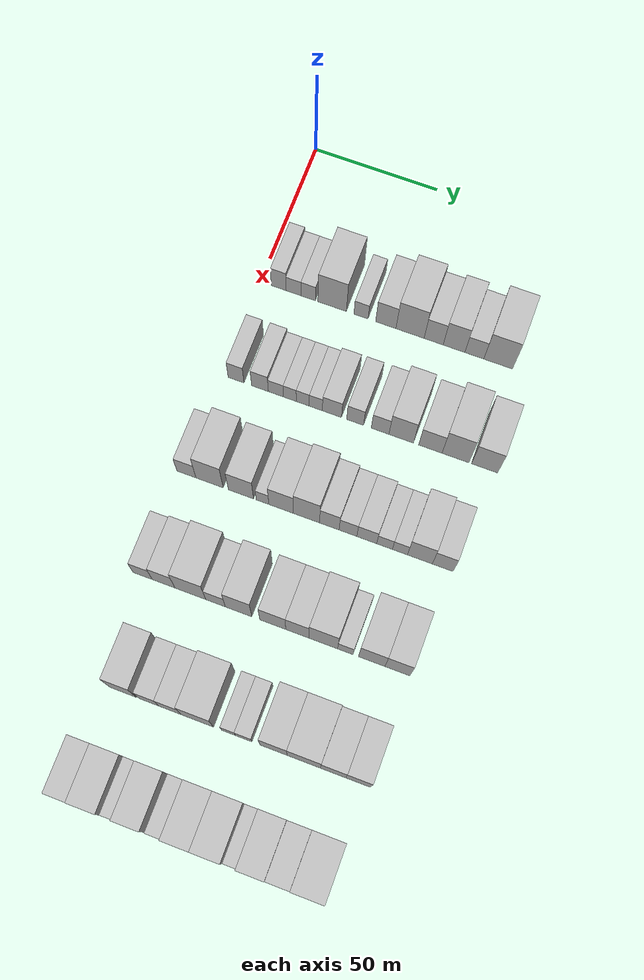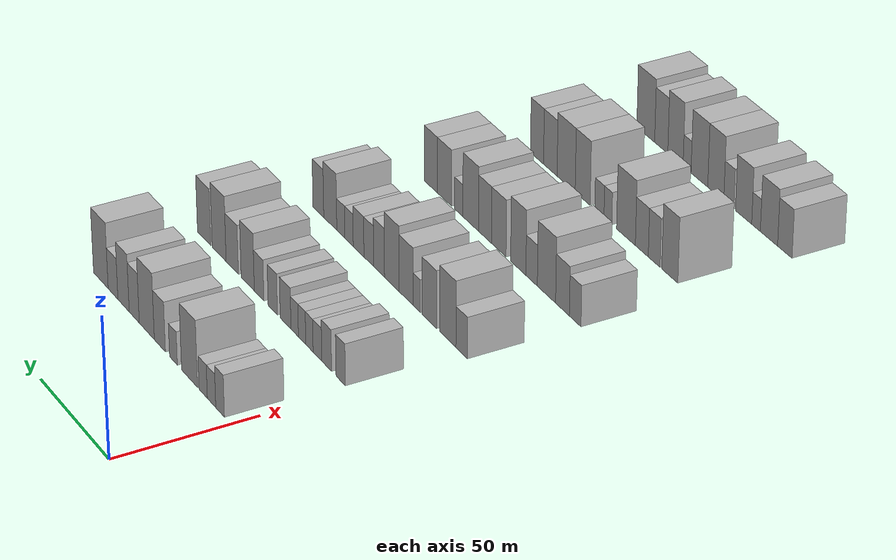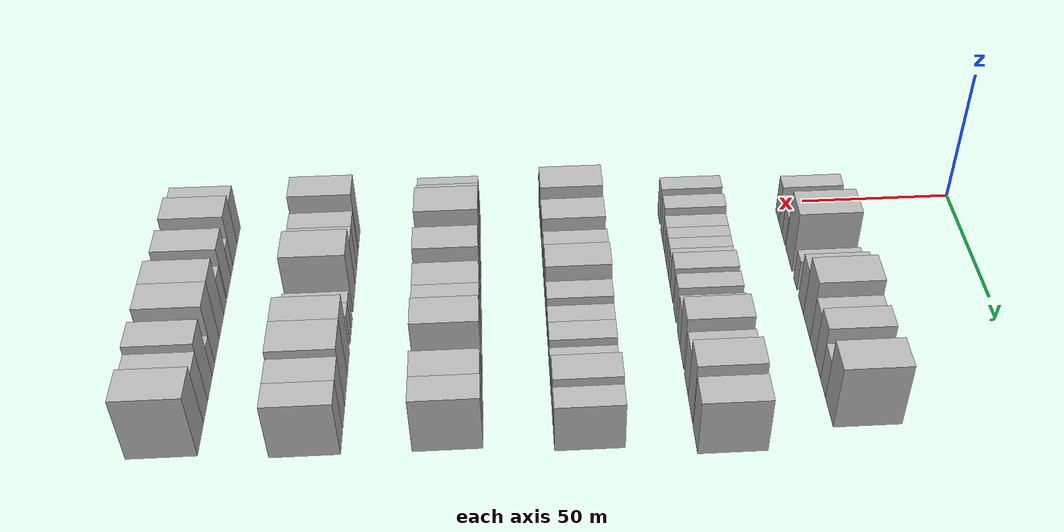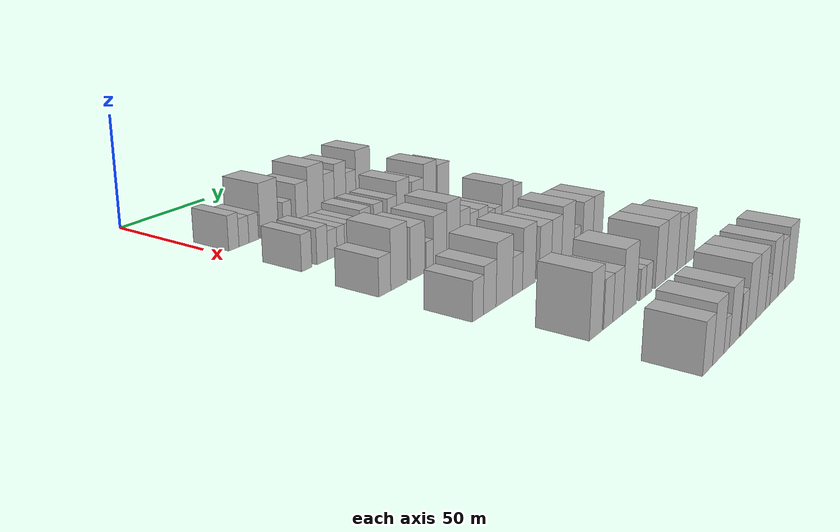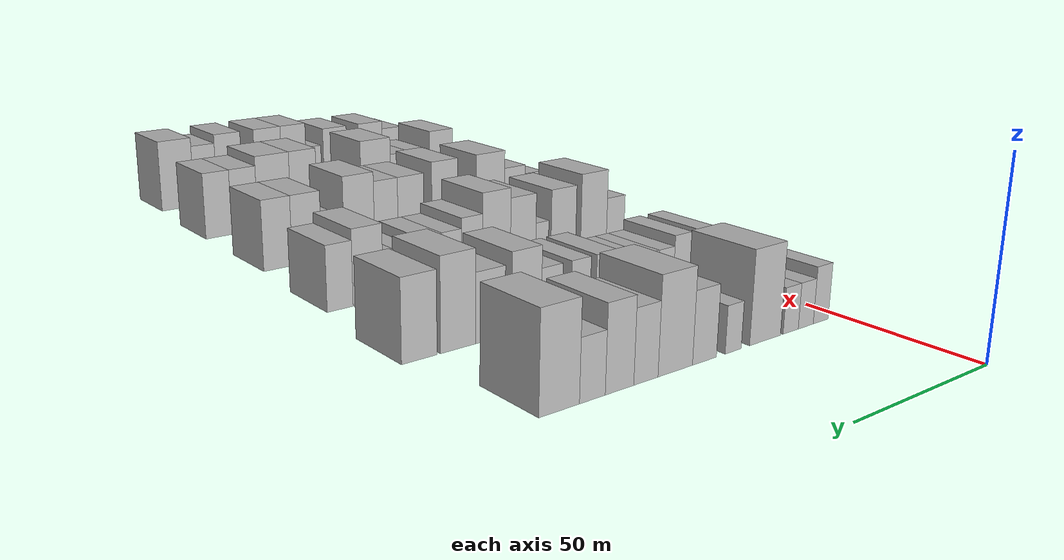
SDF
<sdf version="1.6">
 <world name="default">
  <model name="building_69">
   <static>1</static>
   <pose>50.0000 7.3095 0 0.000000 0.000000 0.000000</pose>
   <link name="link">
    <pose>0 0 7.50 0 0 0</pose>
    <collision name="collision"><geometry><box><size>20.0000 6.0174 15.0000</size></box></geometry></collision>
    <visual name="visual">
     <cast_shadows>0</cast_shadows>
     <geometry><box><size>20.0000 6.0174 15.0000</size></box></geometry>
     <material>
      <script>
       <uri>model://HANNAS_wall/materials/scripts</uri>
       <uri>model://HANNAS_wall/materials/textures</uri>
       <name>vrc/HANNAS_wall</name>
      </script>
     </material>
    </visual>
   </link>
  </model>
  <model name="building_70">
   <static>1</static>
   <pose>50.0000 13.2689 0 0.000000 0.000000 0.000000</pose>
   <link name="link">
    <pose>0 0 6.00 0 0 0</pose>
    <collision name="collision"><geometry><box><size>20.0000 5.9014 12.0000</size></box></geometry></collision>
    <visual name="visual">
     <cast_shadows>0</cast_shadows>
     <geometry><box><size>20.0000 5.9014 12.0000</size></box></geometry>
     <material>
      <script>
       <uri>model://HANNAS_wall/materials/scripts</uri>
       <uri>model://HANNAS_wall/materials/textures</uri>
       <name>vrc/HANNAS_wall</name>
      </script>
     </material>
    </visual>
   </link>
  </model>
  <model name="building_71">
   <static>1</static>
   <pose>50.0000 19.1371 0 0.000000 0.000000 0.000000</pose>
   <link name="link">
    <pose>0 0 6.00 0 0 0</pose>
    <collision name="collision"><geometry><box><size>20.0000 5.8350 12.0000</size></box></geometry></collision>
    <visual name="visual">
     <cast_shadows>0</cast_shadows>
     <geometry><box><size>20.0000 5.8350 12.0000</size></box></geometry>
     <material>
      <script>
       <uri>model://HANNAS_wall/materials/scripts</uri>
       <uri>model://HANNAS_wall/materials/textures</uri>
       <name>vrc/HANNAS_wall</name>
      </script>
     </material>
    </visual>
   </link>
  </model>
  <model name="building_72">
   <static>1</static>
   <pose>50.0000 28.7532 0 0.000000 0.000000 0.000000</pose>
   <link name="link">
    <pose>0 0 12.00 0 0 0</pose>
    <collision name="collision"><geometry><box><size>20.0000 11.3973 24.0000</size></box></geometry></collision>
    <visual name="visual">
     <cast_shadows>0</cast_shadows>
     <geometry><box><size>20.0000 11.3973 24.0000</size></box></geometry>
     <material>
      <script>
       <uri>model://HANNAS_wall/materials/scripts</uri>
       <uri>model://HANNAS_wall/materials/textures</uri>
       <name>vrc/HANNAS_wall</name>
      </script>
     </material>
    </visual>
   </link>
  </model>
  <model name="building_73">
   <static>1</static>
   <pose>50.0000 40.2672 0 0.000000 0.000000 0.000000</pose>
   <link name="link">
    <pose>0 0 6.00 0 0 0</pose>
    <collision name="collision"><geometry><box><size>20.0000 5.6307 12.0000</size></box></geometry></collision>
    <visual name="visual">
     <cast_shadows>0</cast_shadows>
     <geometry><box><size>20.0000 5.6307 12.0000</size></box></geometry>
     <material>
      <script>
       <uri>model://HANNAS_wall/materials/scripts</uri>
       <uri>model://HANNAS_wall/materials/textures</uri>
       <name>vrc/HANNAS_wall</name>
      </script>
     </material>
    </visual>
   </link>
  </model>
  <model name="building_74">
   <static>1</static>
   <pose>50.0000 50.1146 0 0.000000 0.000000 0.000000</pose>
   <link name="link">
    <pose>0 0 9.00 0 0 0</pose>
    <collision name="collision"><geometry><box><size>20.0000 8.0639 18.0000</size></box></geometry></collision>
    <visual name="visual">
     <cast_shadows>0</cast_shadows>
     <geometry><box><size>20.0000 8.0639 18.0000</size></box></geometry>
     <material>
      <script>
       <uri>model://HANNAS_wall/materials/scripts</uri>
       <uri>model://HANNAS_wall/materials/textures</uri>
       <name>vrc/HANNAS_wall</name>
      </script>
     </material>
    </visual>
   </link>
  </model>
  <model name="building_75">
   <static>1</static>
   <pose>50.0000 59.7091 0 0.000000 0.000000 0.000000</pose>
   <link name="link">
    <pose>0 0 12.00 0 0 0</pose>
    <collision name="collision"><geometry><box><size>20.0000 11.1252 24.0000</size></box></geometry></collision>
    <visual name="visual">
     <cast_shadows>0</cast_shadows>
     <geometry><box><size>20.0000 11.1252 24.0000</size></box></geometry>
     <material>
      <script>
       <uri>model://HANNAS_wall/materials/scripts</uri>
       <uri>model://HANNAS_wall/materials/textures</uri>
       <name>vrc/HANNAS_wall</name>
      </script>
     </material>
    </visual>
   </link>
  </model>
  <model name="building_76">
   <static>1</static>
   <pose>50.0000 69.0193 0 0.000000 0.000000 0.000000</pose>
   <link name="link">
    <pose>0 0 9.00 0 0 0</pose>
    <collision name="collision"><geometry><box><size>20.0000 7.4951 18.0000</size></box></geometry></collision>
    <visual name="visual">
     <cast_shadows>0</cast_shadows>
     <geometry><box><size>20.0000 7.4951 18.0000</size></box></geometry>
     <material>
      <script>
       <uri>model://HANNAS_wall/materials/scripts</uri>
       <uri>model://HANNAS_wall/materials/textures</uri>
       <name>vrc/HANNAS_wall</name>
      </script>
     </material>
    </visual>
   </link>
  </model>
  <model name="building_77">
   <static>1</static>
   <pose>50.0000 77.0157 0 0.000000 0.000000 0.000000</pose>
   <link name="link">
    <pose>0 0 10.50 0 0 0</pose>
    <collision name="collision"><geometry><box><size>20.0000 8.4978 21.0000</size></box></geometry></collision>
    <visual name="visual">
     <cast_shadows>0</cast_shadows>
     <geometry><box><size>20.0000 8.4978 21.0000</size></box></geometry>
     <material>
      <script>
       <uri>model://HANNAS_wall/materials/scripts</uri>
       <uri>model://HANNAS_wall/materials/textures</uri>
       <name>vrc/HANNAS_wall</name>
      </script>
     </material>
    </visual>
   </link>
  </model>
  <model name="building_78">
   <static>1</static>
   <pose>50.0000 84.9643 0 0.000000 0.000000 0.000000</pose>
   <link name="link">
    <pose>0 0 7.50 0 0 0</pose>
    <collision name="collision"><geometry><box><size>20.0000 7.3994 15.0000</size></box></geometry></collision>
    <visual name="visual">
     <cast_shadows>0</cast_shadows>
     <geometry><box><size>20.0000 7.3994 15.0000</size></box></geometry>
     <material>
      <script>
       <uri>model://HANNAS_wall/materials/scripts</uri>
       <uri>model://HANNAS_wall/materials/textures</uri>
       <name>vrc/HANNAS_wall</name>
      </script>
     </material>
    </visual>
   </link>
  </model>
  <model name="building_79">
   <static>1</static>
   <pose>50.0000 94.2592 0 0.000000 0.000000 0.000000</pose>
   <link name="link">
    <pose>0 0 12.00 0 0 0</pose>
    <collision name="collision"><geometry><box><size>20.0000 11.1904 24.0000</size></box></geometry></collision>
    <visual name="visual">
     <cast_shadows>0</cast_shadows>
     <geometry><box><size>20.0000 11.1904 24.0000</size></box></geometry>
     <material>
      <script>
       <uri>model://HANNAS_wall/materials/scripts</uri>
       <uri>model://HANNAS_wall/materials/textures</uri>
       <name>vrc/HANNAS_wall</name>
      </script>
     </material>
    </visual>
   </link>
  </model>
  <model name="building_212">
   <static>1</static>
   <pose>90.0000 5.7569 0 0.000000 0.000000 0.000000</pose>
   <link name="link">
    <pose>0 0 7.50 0 0 0</pose>
    <collision name="collision"><geometry><box><size>20.0000 6.2417 15.0000</size></box></geometry></collision>
    <visual name="visual">
     <cast_shadows>0</cast_shadows>
     <geometry><box><size>20.0000 6.2417 15.0000</size></box></geometry>
     <material>
      <script>
       <uri>model://HANNAS_wall/materials/scripts</uri>
       <uri>model://HANNAS_wall/materials/textures</uri>
       <name>vrc/HANNAS_wall</name>
      </script>
     </material>
    </visual>
   </link>
  </model>
  <model name="building_213">
   <static>1</static>
   <pose>90.0000 15.1800 0 0.000000 0.000000 0.000000</pose>
   <link name="link">
    <pose>0 0 7.50 0 0 0</pose>
    <collision name="collision"><geometry><box><size>20.0000 6.6044 15.0000</size></box></geometry></collision>
    <visual name="visual">
     <cast_shadows>0</cast_shadows>
     <geometry><box><size>20.0000 6.6044 15.0000</size></box></geometry>
     <material>
      <script>
       <uri>model://HANNAS_wall/materials/scripts</uri>
       <uri>model://HANNAS_wall/materials/textures</uri>
       <name>vrc/HANNAS_wall</name>
      </script>
     </material>
    </visual>
   </link>
  </model>
  <model name="building_214">
   <static>1</static>
   <pose>90.0000 21.4472 0 0.000000 0.000000 0.000000</pose>
   <link name="link">
    <pose>0 0 6.00 0 0 0</pose>
    <collision name="collision"><geometry><box><size>20.0000 5.9299 12.0000</size></box></geometry></collision>
    <visual name="visual">
     <cast_shadows>0</cast_shadows>
     <geometry><box><size>20.0000 5.9299 12.0000</size></box></geometry>
     <material>
      <script>
       <uri>model://HANNAS_wall/materials/scripts</uri>
       <uri>model://HANNAS_wall/materials/textures</uri>
       <name>vrc/HANNAS_wall</name>
      </script>
     </material>
    </visual>
   </link>
  </model>
  <model name="building_215">
   <static>1</static>
   <pose>90.0000 26.9293 0 0.000000 0.000000 0.000000</pose>
   <link name="link">
    <pose>0 0 6.00 0 0 0</pose>
    <collision name="collision"><geometry><box><size>20.0000 5.0343 12.0000</size></box></geometry></collision>
    <visual name="visual">
     <cast_shadows>0</cast_shadows>
     <geometry><box><size>20.0000 5.0343 12.0000</size></box></geometry>
     <material>
      <script>
       <uri>model://HANNAS_wall/materials/scripts</uri>
       <uri>model://HANNAS_wall/materials/textures</uri>
       <name>vrc/HANNAS_wall</name>
      </script>
     </material>
    </visual>
   </link>
  </model>
  <model name="building_216">
   <static>1</static>
   <pose>90.0000 31.9751 0 0.000000 0.000000 0.000000</pose>
   <link name="link">
    <pose>0 0 6.00 0 0 0</pose>
    <collision name="collision"><geometry><box><size>20.0000 5.0571 12.0000</size></box></geometry></collision>
    <visual name="visual">
     <cast_shadows>0</cast_shadows>
     <geometry><box><size>20.0000 5.0571 12.0000</size></box></geometry>
     <material>
      <script>
       <uri>model://HANNAS_wall/materials/scripts</uri>
       <uri>model://HANNAS_wall/materials/textures</uri>
       <name>vrc/HANNAS_wall</name>
      </script>
     </material>
    </visual>
   </link>
  </model>
  <model name="building_217">
   <static>1</static>
   <pose>90.0000 37.0781 0 0.000000 0.000000 0.000000</pose>
   <link name="link">
    <pose>0 0 6.00 0 0 0</pose>
    <collision name="collision"><geometry><box><size>20.0000 5.1490 12.0000</size></box></geometry></collision>
    <visual name="visual">
     <cast_shadows>0</cast_shadows>
     <geometry><box><size>20.0000 5.1490 12.0000</size></box></geometry>
     <material>
      <script>
       <uri>model://HANNAS_wall/materials/scripts</uri>
       <uri>model://HANNAS_wall/materials/textures</uri>
       <name>vrc/HANNAS_wall</name>
      </script>
     </material>
    </visual>
   </link>
  </model>
  <model name="building_218">
   <static>1</static>
   <pose>90.0000 43.3965 0 0.000000 0.000000 0.000000</pose>
   <link name="link">
    <pose>0 0 7.50 0 0 0</pose>
    <collision name="collision"><geometry><box><size>20.0000 7.4877 15.0000</size></box></geometry></collision>
    <visual name="visual">
     <cast_shadows>0</cast_shadows>
     <geometry><box><size>20.0000 7.4877 15.0000</size></box></geometry>
     <material>
      <script>
       <uri>model://HANNAS_wall/materials/scripts</uri>
       <uri>model://HANNAS_wall/materials/textures</uri>
       <name>vrc/HANNAS_wall</name>
      </script>
     </material>
    </visual>
   </link>
  </model>
  <model name="building_219">
   <static>1</static>
   <pose>90.0000 52.4154 0 0.000000 0.000000 0.000000</pose>
   <link name="link">
    <pose>0 0 7.50 0 0 0</pose>
    <collision name="collision"><geometry><box><size>20.0000 6.5501 15.0000</size></box></geometry></collision>
    <visual name="visual">
     <cast_shadows>0</cast_shadows>
     <geometry><box><size>20.0000 6.5501 15.0000</size></box></geometry>
     <material>
      <script>
       <uri>model://HANNAS_wall/materials/scripts</uri>
       <uri>model://HANNAS_wall/materials/textures</uri>
       <name>vrc/HANNAS_wall</name>
      </script>
     </material>
    </visual>
   </link>
  </model>
  <model name="building_220">
   <static>1</static>
   <pose>90.0000 62.1055 0 0.000000 0.000000 0.000000</pose>
   <link name="link">
    <pose>0 0 7.50 0 0 0</pose>
    <collision name="collision"><geometry><box><size>20.0000 6.8302 15.0000</size></box></geometry></collision>
    <visual name="visual">
     <cast_shadows>0</cast_shadows>
     <geometry><box><size>20.0000 6.8302 15.0000</size></box></geometry>
     <material>
      <script>
       <uri>model://HANNAS_wall/materials/scripts</uri>
       <uri>model://HANNAS_wall/materials/textures</uri>
       <name>vrc/HANNAS_wall</name>
      </script>
     </material>
    </visual>
   </link>
  </model>
  <model name="building_221">
   <static>1</static>
   <pose>90.0000 70.2670 0 0.000000 0.000000 0.000000</pose>
   <link name="link">
    <pose>0 0 10.50 0 0 0</pose>
    <collision name="collision"><geometry><box><size>20.0000 9.4926 21.0000</size></box></geometry></collision>
    <visual name="visual">
     <cast_shadows>0</cast_shadows>
     <geometry><box><size>20.0000 9.4926 21.0000</size></box></geometry>
     <material>
      <script>
       <uri>model://HANNAS_wall/materials/scripts</uri>
       <uri>model://HANNAS_wall/materials/textures</uri>
       <name>vrc/HANNAS_wall</name>
      </script>
     </material>
    </visual>
   </link>
  </model>
  <model name="building_222">
   <static>1</static>
   <pose>90.0000 81.4906 0 0.000000 0.000000 0.000000</pose>
   <link name="link">
    <pose>0 0 9.00 0 0 0</pose>
    <collision name="collision"><geometry><box><size>20.0000 8.9547 18.0000</size></box></geometry></collision>
    <visual name="visual">
     <cast_shadows>0</cast_shadows>
     <geometry><box><size>20.0000 8.9547 18.0000</size></box></geometry>
     <material>
      <script>
       <uri>model://HANNAS_wall/materials/scripts</uri>
       <uri>model://HANNAS_wall/materials/textures</uri>
       <name>vrc/HANNAS_wall</name>
      </script>
     </material>
    </visual>
   </link>
  </model>
  <model name="building_223">
   <static>1</static>
   <pose>90.0000 91.1051 0 0.000000 0.000000 0.000000</pose>
   <link name="link">
    <pose>0 0 12.00 0 0 0</pose>
    <collision name="collision"><geometry><box><size>20.0000 10.2742 24.0000</size></box></geometry></collision>
    <visual name="visual">
     <cast_shadows>0</cast_shadows>
     <geometry><box><size>20.0000 10.2742 24.0000</size></box></geometry>
     <material>
      <script>
       <uri>model://HANNAS_wall/materials/scripts</uri>
       <uri>model://HANNAS_wall/materials/textures</uri>
       <name>vrc/HANNAS_wall</name>
      </script>
     </material>
    </visual>
   </link>
  </model>
  <model name="building_224">
   <static>1</static>
   <pose>90.0000 102.2085 0 0.000000 0.000000 0.000000</pose>
   <link name="link">
    <pose>0 0 10.50 0 0 0</pose>
    <collision name="collision"><geometry><box><size>20.0000 9.9325 21.0000</size></box></geometry></collision>
    <visual name="visual">
     <cast_shadows>0</cast_shadows>
     <geometry><box><size>20.0000 9.9325 21.0000</size></box></geometry>
     <material>
      <script>
       <uri>model://HANNAS_wall/materials/scripts</uri>
       <uri>model://HANNAS_wall/materials/textures</uri>
       <name>vrc/HANNAS_wall</name>
      </script>
     </material>
    </visual>
   </link>
  </model>
  <model name="building_349">
   <static>1</static>
   <pose>130.0000 2.1765 0 0.000000 0.000000 0.000000</pose>
   <link name="link">
    <pose>0 0 7.50 0 0 0</pose>
    <collision name="collision"><geometry><box><size>20.0000 7.4127 15.0000</size></box></geometry></collision>
    <visual name="visual">
     <cast_shadows>0</cast_shadows>
     <geometry><box><size>20.0000 7.4127 15.0000</size></box></geometry>
     <material>
      <script>
       <uri>model://HANNAS_wall/materials/scripts</uri>
       <uri>model://HANNAS_wall/materials/textures</uri>
       <name>vrc/HANNAS_wall</name>
      </script>
     </material>
    </visual>
   </link>
  </model>
  <model name="building_350">
   <static>1</static>
   <pose>130.0000 11.1733 0 0.000000 0.000000 0.000000</pose>
   <link name="link">
    <pose>0 0 12.00 0 0 0</pose>
    <collision name="collision"><geometry><box><size>20.0000 10.5808 24.0000</size></box></geometry></collision>
    <visual name="visual">
     <cast_shadows>0</cast_shadows>
     <geometry><box><size>20.0000 10.5808 24.0000</size></box></geometry>
     <material>
      <script>
       <uri>model://HANNAS_wall/materials/scripts</uri>
       <uri>model://HANNAS_wall/materials/textures</uri>
       <name>vrc/HANNAS_wall</name>
      </script>
     </material>
    </visual>
   </link>
  </model>
  <model name="building_351">
   <static>1</static>
   <pose>130.0000 23.3234 0 0.000000 0.000000 0.000000</pose>
   <link name="link">
    <pose>0 0 10.50 0 0 0</pose>
    <collision name="collision"><geometry><box><size>20.0000 9.7195 21.0000</size></box></geometry></collision>
    <visual name="visual">
     <cast_shadows>0</cast_shadows>
     <geometry><box><size>20.0000 9.7195 21.0000</size></box></geometry>
     <material>
      <script>
       <uri>model://HANNAS_wall/materials/scripts</uri>
       <uri>model://HANNAS_wall/materials/textures</uri>
       <name>vrc/HANNAS_wall</name>
      </script>
     </material>
    </visual>
   </link>
  </model>
  <model name="building_352">
   <static>1</static>
   <pose>130.0000 31.6025 0 0.000000 0.000000 0.000000</pose>
   <link name="link">
    <pose>0 0 6.00 0 0 0</pose>
    <collision name="collision"><geometry><box><size>20.0000 4.8387 12.0000</size></box></geometry></collision>
    <visual name="visual">
     <cast_shadows>0</cast_shadows>
     <geometry><box><size>20.0000 4.8387 12.0000</size></box></geometry>
     <material>
      <script>
       <uri>model://HANNAS_wall/materials/scripts</uri>
       <uri>model://HANNAS_wall/materials/textures</uri>
       <name>vrc/HANNAS_wall</name>
      </script>
     </material>
    </visual>
   </link>
  </model>
  <model name="building_353">
   <static>1</static>
   <pose>130.0000 38.7316 0 0.000000 0.000000 0.000000</pose>
   <link name="link">
    <pose>0 0 10.50 0 0 0</pose>
    <collision name="collision"><geometry><box><size>20.0000 9.4195 21.0000</size></box></geometry></collision>
    <visual name="visual">
     <cast_shadows>0</cast_shadows>
     <geometry><box><size>20.0000 9.4195 21.0000</size></box></geometry>
     <material>
      <script>
       <uri>model://HANNAS_wall/materials/scripts</uri>
       <uri>model://HANNAS_wall/materials/textures</uri>
       <name>vrc/HANNAS_wall</name>
      </script>
     </material>
    </visual>
   </link>
  </model>
  <model name="building_354">
   <static>1</static>
   <pose>130.0000 48.4304 0 0.000000 0.000000 0.000000</pose>
   <link name="link">
    <pose>0 0 12.00 0 0 0</pose>
    <collision name="collision"><geometry><box><size>20.0000 9.9781 24.0000</size></box></geometry></collision>
    <visual name="visual">
     <cast_shadows>0</cast_shadows>
     <geometry><box><size>20.0000 9.9781 24.0000</size></box></geometry>
     <material>
      <script>
       <uri>model://HANNAS_wall/materials/scripts</uri>
       <uri>model://HANNAS_wall/materials/textures</uri>
       <name>vrc/HANNAS_wall</name>
      </script>
     </material>
    </visual>
   </link>
  </model>
  <model name="building_355">
   <static>1</static>
   <pose>130.0000 57.1374 0 0.000000 0.000000 0.000000</pose>
   <link name="link">
    <pose>0 0 9.00 0 0 0</pose>
    <collision name="collision"><geometry><box><size>20.0000 7.4360 18.0000</size></box></geometry></collision>
    <visual name="visual">
     <cast_shadows>0</cast_shadows>
     <geometry><box><size>20.0000 7.4360 18.0000</size></box></geometry>
     <material>
      <script>
       <uri>model://HANNAS_wall/materials/scripts</uri>
       <uri>model://HANNAS_wall/materials/textures</uri>
       <name>vrc/HANNAS_wall</name>
      </script>
     </material>
    </visual>
   </link>
  </model>
  <model name="building_356">
   <static>1</static>
   <pose>130.0000 64.2188 0 0.000000 0.000000 0.000000</pose>
   <link name="link">
    <pose>0 0 7.50 0 0 0</pose>
    <collision name="collision"><geometry><box><size>20.0000 6.7268 15.0000</size></box></geometry></collision>
    <visual name="visual">
     <cast_shadows>0</cast_shadows>
     <geometry><box><size>20.0000 6.7268 15.0000</size></box></geometry>
     <material>
      <script>
       <uri>model://HANNAS_wall/materials/scripts</uri>
       <uri>model://HANNAS_wall/materials/textures</uri>
       <name>vrc/HANNAS_wall</name>
      </script>
     </material>
    </visual>
   </link>
  </model>
  <model name="building_357">
   <static>1</static>
   <pose>130.0000 71.3233 0 0.000000 0.000000 0.000000</pose>
   <link name="link">
    <pose>0 0 7.50 0 0 0</pose>
    <collision name="collision"><geometry><box><size>20.0000 7.4824 15.0000</size></box></geometry></collision>
    <visual name="visual">
     <cast_shadows>0</cast_shadows>
     <geometry><box><size>20.0000 7.4824 15.0000</size></box></geometry>
     <material>
      <script>
       <uri>model://HANNAS_wall/materials/scripts</uri>
       <uri>model://HANNAS_wall/materials/textures</uri>
       <name>vrc/HANNAS_wall</name>
      </script>
     </material>
    </visual>
   </link>
  </model>
  <model name="building_358">
   <static>1</static>
   <pose>130.0000 78.0271 0 0.000000 0.000000 0.000000</pose>
   <link name="link">
    <pose>0 0 6.00 0 0 0</pose>
    <collision name="collision"><geometry><box><size>20.0000 5.9251 12.0000</size></box></geometry></collision>
    <visual name="visual">
     <cast_shadows>0</cast_shadows>
     <geometry><box><size>20.0000 5.9251 12.0000</size></box></geometry>
     <material>
      <script>
       <uri>model://HANNAS_wall/materials/scripts</uri>
       <uri>model://HANNAS_wall/materials/textures</uri>
       <name>vrc/HANNAS_wall</name>
      </script>
     </material>
    </visual>
   </link>
  </model>
  <model name="building_359">
   <static>1</static>
   <pose>130.0000 83.8194 0 0.000000 0.000000 0.000000</pose>
   <link name="link">
    <pose>0 0 6.00 0 0 0</pose>
    <collision name="collision"><geometry><box><size>20.0000 5.6595 12.0000</size></box></geometry></collision>
    <visual name="visual">
     <cast_shadows>0</cast_shadows>
     <geometry><box><size>20.0000 5.6595 12.0000</size></box></geometry>
     <material>
      <script>
       <uri>model://HANNAS_wall/materials/scripts</uri>
       <uri>model://HANNAS_wall/materials/textures</uri>
       <name>vrc/HANNAS_wall</name>
      </script>
     </material>
    </visual>
   </link>
  </model>
  <model name="building_360">
   <static>1</static>
   <pose>130.0000 91.2999 0 0.000000 0.000000 0.000000</pose>
   <link name="link">
    <pose>0 0 10.50 0 0 0</pose>
    <collision name="collision"><geometry><box><size>20.0000 9.3014 21.0000</size></box></geometry></collision>
    <visual name="visual">
     <cast_shadows>0</cast_shadows>
     <geometry><box><size>20.0000 9.3014 21.0000</size></box></geometry>
     <material>
      <script>
       <uri>model://HANNAS_wall/materials/scripts</uri>
       <uri>model://HANNAS_wall/materials/textures</uri>
       <name>vrc/HANNAS_wall</name>
      </script>
     </material>
    </visual>
   </link>
  </model>
  <model name="building_361">
   <static>1</static>
   <pose>130.0000 99.8344 0 0.000000 0.000000 0.000000</pose>
   <link name="link">
    <pose>0 0 9.00 0 0 0</pose>
    <collision name="collision"><geometry><box><size>20.0000 7.7677 18.0000</size></box></geometry></collision>
    <visual name="visual">
     <cast_shadows>0</cast_shadows>
     <geometry><box><size>20.0000 7.7677 18.0000</size></box></geometry>
     <material>
      <script>
       <uri>model://HANNAS_wall/materials/scripts</uri>
       <uri>model://HANNAS_wall/materials/textures</uri>
       <name>vrc/HANNAS_wall</name>
      </script>
     </material>
    </visual>
   </link>
  </model>
  <model name="building_483">
   <static>1</static>
   <pose>170.0000 1.7120 0 0.000000 0.000000 0.000000</pose>
   <link name="link">
    <pose>0 0 7.50 0 0 0</pose>
    <collision name="collision"><geometry><box><size>20.0000 7.2954 15.0000</size></box></geometry></collision>
    <visual name="visual">
     <cast_shadows>0</cast_shadows>
     <geometry><box><size>20.0000 7.2954 15.0000</size></box></geometry>
     <material>
      <script>
       <uri>model://HANNAS_wall/materials/scripts</uri>
       <uri>model://HANNAS_wall/materials/textures</uri>
       <name>vrc/HANNAS_wall</name>
      </script>
     </material>
    </visual>
   </link>
  </model>
  <model name="building_484">
   <static>1</static>
   <pose>170.0000 9.6923 0 0.000000 0.000000 0.000000</pose>
   <link name="link">
    <pose>0 0 9.00 0 0 0</pose>
    <collision name="collision"><geometry><box><size>20.0000 8.6653 18.0000</size></box></geometry></collision>
    <visual name="visual">
     <cast_shadows>0</cast_shadows>
     <geometry><box><size>20.0000 8.6653 18.0000</size></box></geometry>
     <material>
      <script>
       <uri>model://HANNAS_wall/materials/scripts</uri>
       <uri>model://HANNAS_wall/materials/textures</uri>
       <name>vrc/HANNAS_wall</name>
      </script>
     </material>
    </visual>
   </link>
  </model>
  <model name="building_485">
   <static>1</static>
   <pose>170.0000 19.8668 0 0.000000 0.000000 0.000000</pose>
   <link name="link">
    <pose>0 0 12.00 0 0 0</pose>
    <collision name="collision"><geometry><box><size>20.0000 11.6835 24.0000</size></box></geometry></collision>
    <visual name="visual">
     <cast_shadows>0</cast_shadows>
     <geometry><box><size>20.0000 11.6835 24.0000</size></box></geometry>
     <material>
      <script>
       <uri>model://HANNAS_wall/materials/scripts</uri>
       <uri>model://HANNAS_wall/materials/textures</uri>
       <name>vrc/HANNAS_wall</name>
      </script>
     </material>
    </visual>
   </link>
  </model>
  <model name="building_486">
   <static>1</static>
   <pose>170.0000 29.4058 0 0.000000 0.000000 0.000000</pose>
   <link name="link">
    <pose>0 0 7.50 0 0 0</pose>
    <collision name="collision"><geometry><box><size>20.0000 7.3946 15.0000</size></box></geometry></collision>
    <visual name="visual">
     <cast_shadows>0</cast_shadows>
     <geometry><box><size>20.0000 7.3946 15.0000</size></box></geometry>
     <material>
      <script>
       <uri>model://HANNAS_wall/materials/scripts</uri>
       <uri>model://HANNAS_wall/materials/textures</uri>
       <name>vrc/HANNAS_wall</name>
      </script>
     </material>
    </visual>
   </link>
  </model>
  <model name="building_487">
   <static>1</static>
   <pose>170.0000 38.0755 0 0.000000 0.000000 0.000000</pose>
   <link name="link">
    <pose>0 0 12.00 0 0 0</pose>
    <collision name="collision"><geometry><box><size>20.0000 9.9447 24.0000</size></box></geometry></collision>
    <visual name="visual">
     <cast_shadows>0</cast_shadows>
     <geometry><box><size>20.0000 9.9447 24.0000</size></box></geometry>
     <material>
      <script>
       <uri>model://HANNAS_wall/materials/scripts</uri>
       <uri>model://HANNAS_wall/materials/textures</uri>
       <name>vrc/HANNAS_wall</name>
      </script>
     </material>
    </visual>
   </link>
  </model>
  <model name="building_488">
   <static>1</static>
   <pose>170.0000 50.8866 0 0.000000 0.000000 0.000000</pose>
   <link name="link">
    <pose>0 0 10.50 0 0 0</pose>
    <collision name="collision"><geometry><box><size>20.0000 9.6776 21.0000</size></box></geometry></collision>
    <visual name="visual">
     <cast_shadows>0</cast_shadows>
     <geometry><box><size>20.0000 9.6776 21.0000</size></box></geometry>
     <material>
      <script>
       <uri>model://HANNAS_wall/materials/scripts</uri>
       <uri>model://HANNAS_wall/materials/textures</uri>
       <name>vrc/HANNAS_wall</name>
      </script>
     </material>
    </visual>
   </link>
  </model>
  <model name="building_489">
   <static>1</static>
   <pose>170.0000 59.9993 0 0.000000 0.000000 0.000000</pose>
   <link name="link">
    <pose>0 0 10.50 0 0 0</pose>
    <collision name="collision"><geometry><box><size>20.0000 8.5478 21.0000</size></box></geometry></collision>
    <visual name="visual">
     <cast_shadows>0</cast_shadows>
     <geometry><box><size>20.0000 8.5478 21.0000</size></box></geometry>
     <material>
      <script>
       <uri>model://HANNAS_wall/materials/scripts</uri>
       <uri>model://HANNAS_wall/materials/textures</uri>
       <name>vrc/HANNAS_wall</name>
      </script>
     </material>
    </visual>
   </link>
  </model>
  <model name="building_490">
   <static>1</static>
   <pose>170.0000 69.6047 0 0.000000 0.000000 0.000000</pose>
   <link name="link">
    <pose>0 0 12.00 0 0 0</pose>
    <collision name="collision"><geometry><box><size>20.0000 10.6629 24.0000</size></box></geometry></collision>
    <visual name="visual">
     <cast_shadows>0</cast_shadows>
     <geometry><box><size>20.0000 10.6629 24.0000</size></box></geometry>
     <material>
      <script>
       <uri>model://HANNAS_wall/materials/scripts</uri>
       <uri>model://HANNAS_wall/materials/textures</uri>
       <name>vrc/HANNAS_wall</name>
      </script>
     </material>
    </visual>
   </link>
  </model>
  <model name="building_491">
   <static>1</static>
   <pose>170.0000 77.7971 0 0.000000 0.000000 0.000000</pose>
   <link name="link">
    <pose>0 0 6.00 0 0 0</pose>
    <collision name="collision"><geometry><box><size>20.0000 5.7220 12.0000</size></box></geometry></collision>
    <visual name="visual">
     <cast_shadows>0</cast_shadows>
     <geometry><box><size>20.0000 5.7220 12.0000</size></box></geometry>
     <material>
      <script>
       <uri>model://HANNAS_wall/materials/scripts</uri>
       <uri>model://HANNAS_wall/materials/textures</uri>
       <name>vrc/HANNAS_wall</name>
      </script>
     </material>
    </visual>
   </link>
  </model>
  <model name="building_492">
   <static>1</static>
   <pose>170.0000 87.5026 0 0.000000 0.000000 0.000000</pose>
   <link name="link">
    <pose>0 0 10.50 0 0 0</pose>
    <collision name="collision"><geometry><box><size>20.0000 9.6890 21.0000</size></box></geometry></collision>
    <visual name="visual">
     <cast_shadows>0</cast_shadows>
     <geometry><box><size>20.0000 9.6890 21.0000</size></box></geometry>
     <material>
      <script>
       <uri>model://HANNAS_wall/materials/scripts</uri>
       <uri>model://HANNAS_wall/materials/textures</uri>
       <name>vrc/HANNAS_wall</name>
      </script>
     </material>
    </visual>
   </link>
  </model>
  <model name="building_493">
   <static>1</static>
   <pose>170.0000 96.9383 0 0.000000 0.000000 0.000000</pose>
   <link name="link">
    <pose>0 0 10.50 0 0 0</pose>
    <collision name="collision"><geometry><box><size>20.0000 9.1825 21.0000</size></box></geometry></collision>
    <visual name="visual">
     <cast_shadows>0</cast_shadows>
     <geometry><box><size>20.0000 9.1825 21.0000</size></box></geometry>
     <material>
      <script>
       <uri>model://HANNAS_wall/materials/scripts</uri>
       <uri>model://HANNAS_wall/materials/textures</uri>
       <name>vrc/HANNAS_wall</name>
      </script>
     </material>
    </visual>
   </link>
  </model>
  <model name="building_624">
   <static>1</static>
   <pose>210.0000 11.1513 0 0.000000 0.000000 0.000000</pose>
   <link name="link">
    <pose>0 0 12.00 0 0 0</pose>
    <collision name="collision"><geometry><box><size>20.0000 9.9317 24.0000</size></box></geometry></collision>
    <visual name="visual">
     <cast_shadows>0</cast_shadows>
     <geometry><box><size>20.0000 9.9317 24.0000</size></box></geometry>
     <material>
      <script>
       <uri>model://HANNAS_wall/materials/scripts</uri>
       <uri>model://HANNAS_wall/materials/textures</uri>
       <name>vrc/HANNAS_wall</name>
      </script>
     </material>
    </visual>
   </link>
  </model>
  <model name="building_625">
   <static>1</static>
   <pose>210.0000 20.8089 0 0.000000 0.000000 0.000000</pose>
   <link name="link">
    <pose>0 0 9.00 0 0 0</pose>
    <collision name="collision"><geometry><box><size>20.0000 7.3837 18.0000</size></box></geometry></collision>
    <visual name="visual">
     <cast_shadows>0</cast_shadows>
     <geometry><box><size>20.0000 7.3837 18.0000</size></box></geometry>
     <material>
      <script>
       <uri>model://HANNAS_wall/materials/scripts</uri>
       <uri>model://HANNAS_wall/materials/textures</uri>
       <name>vrc/HANNAS_wall</name>
      </script>
     </material>
    </visual>
   </link>
  </model>
  <model name="building_626">
   <static>1</static>
   <pose>210.0000 28.5545 0 0.000000 0.000000 0.000000</pose>
   <link name="link">
    <pose>0 0 9.00 0 0 0</pose>
    <collision name="collision"><geometry><box><size>20.0000 8.1075 18.0000</size></box></geometry></collision>
    <visual name="visual">
     <cast_shadows>0</cast_shadows>
     <geometry><box><size>20.0000 8.1075 18.0000</size></box></geometry>
     <material>
      <script>
       <uri>model://HANNAS_wall/materials/scripts</uri>
       <uri>model://HANNAS_wall/materials/textures</uri>
       <name>vrc/HANNAS_wall</name>
      </script>
     </material>
    </visual>
   </link>
  </model>
  <model name="building_627">
   <static>1</static>
   <pose>210.0000 38.5832 0 0.000000 0.000000 0.000000</pose>
   <link name="link">
    <pose>0 0 12.00 0 0 0</pose>
    <collision name="collision"><geometry><box><size>20.0000 11.9498 24.0000</size></box></geometry></collision>
    <visual name="visual">
     <cast_shadows>0</cast_shadows>
     <geometry><box><size>20.0000 11.9498 24.0000</size></box></geometry>
     <material>
      <script>
       <uri>model://HANNAS_wall/materials/scripts</uri>
       <uri>model://HANNAS_wall/materials/textures</uri>
       <name>vrc/HANNAS_wall</name>
      </script>
     </material>
    </visual>
   </link>
  </model>
  <model name="building_628">
   <static>1</static>
   <pose>210.0000 50.0927 0 0.000000 0.000000 0.000000</pose>
   <link name="link">
    <pose>0 0 6.00 0 0 0</pose>
    <collision name="collision"><geometry><box><size>20.0000 5.0692 12.0000</size></box></geometry></collision>
    <visual name="visual">
     <cast_shadows>0</cast_shadows>
     <geometry><box><size>20.0000 5.0692 12.0000</size></box></geometry>
     <material>
      <script>
       <uri>model://HANNAS_wall/materials/scripts</uri>
       <uri>model://HANNAS_wall/materials/textures</uri>
       <name>vrc/HANNAS_wall</name>
      </script>
     </material>
    </visual>
   </link>
  </model>
  <model name="building_629">
   <static>1</static>
   <pose>210.0000 55.6162 0 0.000000 0.000000 0.000000</pose>
   <link name="link">
    <pose>0 0 6.00 0 0 0</pose>
    <collision name="collision"><geometry><box><size>20.0000 5.9778 12.0000</size></box></geometry></collision>
    <visual name="visual">
     <cast_shadows>0</cast_shadows>
     <geometry><box><size>20.0000 5.9778 12.0000</size></box></geometry>
     <material>
      <script>
       <uri>model://HANNAS_wall/materials/scripts</uri>
       <uri>model://HANNAS_wall/materials/textures</uri>
       <name>vrc/HANNAS_wall</name>
      </script>
     </material>
    </visual>
   </link>
  </model>
  <model name="building_630">
   <static>1</static>
   <pose>210.0000 66.5176 0 0.000000 0.000000 0.000000</pose>
   <link name="link">
    <pose>0 0 12.00 0 0 0</pose>
    <collision name="collision"><geometry><box><size>20.0000 9.8251 24.0000</size></box></geometry></collision>
    <visual name="visual">
     <cast_shadows>0</cast_shadows>
     <geometry><box><size>20.0000 9.8251 24.0000</size></box></geometry>
     <material>
      <script>
       <uri>model://HANNAS_wall/materials/scripts</uri>
       <uri>model://HANNAS_wall/materials/textures</uri>
       <name>vrc/HANNAS_wall</name>
      </script>
     </material>
    </visual>
   </link>
  </model>
  <model name="building_631">
   <static>1</static>
   <pose>210.0000 77.4238 0 0.000000 0.000000 0.000000</pose>
   <link name="link">
    <pose>0 0 12.00 0 0 0</pose>
    <collision name="collision"><geometry><box><size>20.0000 11.9872 24.0000</size></box></geometry></collision>
    <visual name="visual">
     <cast_shadows>0</cast_shadows>
     <geometry><box><size>20.0000 11.9872 24.0000</size></box></geometry>
     <material>
      <script>
       <uri>model://HANNAS_wall/materials/scripts</uri>
       <uri>model://HANNAS_wall/materials/textures</uri>
       <name>vrc/HANNAS_wall</name>
      </script>
     </material>
    </visual>
   </link>
  </model>
  <model name="building_632">
   <static>1</static>
   <pose>210.0000 87.9492 0 0.000000 0.000000 0.000000</pose>
   <link name="link">
    <pose>0 0 10.50 0 0 0</pose>
    <collision name="collision"><geometry><box><size>20.0000 9.0636 21.0000</size></box></geometry></collision>
    <visual name="visual">
     <cast_shadows>0</cast_shadows>
     <geometry><box><size>20.0000 9.0636 21.0000</size></box></geometry>
     <material>
      <script>
       <uri>model://HANNAS_wall/materials/scripts</uri>
       <uri>model://HANNAS_wall/materials/textures</uri>
       <name>vrc/HANNAS_wall</name>
      </script>
     </material>
    </visual>
   </link>
  </model>
  <model name="building_633">
   <static>1</static>
   <pose>210.0000 96.9043 0 0.000000 0.000000 0.000000</pose>
   <link name="link">
    <pose>0 0 10.50 0 0 0</pose>
    <collision name="collision"><geometry><box><size>20.0000 8.8466 21.0000</size></box></geometry></collision>
    <visual name="visual">
     <cast_shadows>0</cast_shadows>
     <geometry><box><size>20.0000 8.8466 21.0000</size></box></geometry>
     <material>
      <script>
       <uri>model://HANNAS_wall/materials/scripts</uri>
       <uri>model://HANNAS_wall/materials/textures</uri>
       <name>vrc/HANNAS_wall</name>
      </script>
     </material>
    </visual>
   </link>
  </model>
  <model name="building_758">
   <static>1</static>
   <pose>250.0000 6.2989 0 0.000000 0.000000 0.000000</pose>
   <link name="link">
    <pose>0 0 9.00 0 0 0</pose>
    <collision name="collision"><geometry><box><size>20.0000 8.6389 18.0000</size></box></geometry></collision>
    <visual name="visual">
     <cast_shadows>0</cast_shadows>
     <geometry><box><size>20.0000 8.6389 18.0000</size></box></geometry>
     <material>
      <script>
       <uri>model://HANNAS_wall/materials/scripts</uri>
       <uri>model://HANNAS_wall/materials/textures</uri>
       <name>vrc/HANNAS_wall</name>
      </script>
     </material>
    </visual>
   </link>
  </model>
  <model name="building_759">
   <static>1</static>
   <pose>250.0000 15.8360 0 0.000000 0.000000 0.000000</pose>
   <link name="link">
    <pose>0 0 10.50 0 0 0</pose>
    <collision name="collision"><geometry><box><size>20.0000 10.4354 21.0000</size></box></geometry></collision>
    <visual name="visual">
     <cast_shadows>0</cast_shadows>
     <geometry><box><size>20.0000 10.4354 21.0000</size></box></geometry>
     <material>
      <script>
       <uri>model://HANNAS_wall/materials/scripts</uri>
       <uri>model://HANNAS_wall/materials/textures</uri>
       <name>vrc/HANNAS_wall</name>
      </script>
     </material>
    </visual>
   </link>
  </model>
  <model name="building_760">
   <static>1</static>
   <pose>250.0000 23.6853 0 0.000000 0.000000 0.000000</pose>
   <link name="link">
    <pose>0 0 6.00 0 0 0</pose>
    <collision name="collision"><geometry><box><size>20.0000 5.2632 12.0000</size></box></geometry></collision>
    <visual name="visual">
     <cast_shadows>0</cast_shadows>
     <geometry><box><size>20.0000 5.2632 12.0000</size></box></geometry>
     <material>
      <script>
       <uri>model://HANNAS_wall/materials/scripts</uri>
       <uri>model://HANNAS_wall/materials/textures</uri>
       <name>vrc/HANNAS_wall</name>
      </script>
     </material>
    </visual>
   </link>
  </model>
  <model name="building_761">
   <static>1</static>
   <pose>250.0000 31.3178 0 0.000000 0.000000 0.000000</pose>
   <link name="link">
    <pose>0 0 10.50 0 0 0</pose>
    <collision name="collision"><geometry><box><size>20.0000 10.0018 21.0000</size></box></geometry></collision>
    <visual name="visual">
     <cast_shadows>0</cast_shadows>
     <geometry><box><size>20.0000 10.0018 21.0000</size></box></geometry>
     <material>
      <script>
       <uri>model://HANNAS_wall/materials/scripts</uri>
       <uri>model://HANNAS_wall/materials/textures</uri>
       <name>vrc/HANNAS_wall</name>
      </script>
     </material>
    </visual>
   </link>
  </model>
  <model name="building_762">
   <static>1</static>
   <pose>250.0000 40.4320 0 0.000000 0.000000 0.000000</pose>
   <link name="link">
    <pose>0 0 7.50 0 0 0</pose>
    <collision name="collision"><geometry><box><size>20.0000 6.2267 15.0000</size></box></geometry></collision>
    <visual name="visual">
     <cast_shadows>0</cast_shadows>
     <geometry><box><size>20.0000 6.2267 15.0000</size></box></geometry>
     <material>
      <script>
       <uri>model://HANNAS_wall/materials/scripts</uri>
       <uri>model://HANNAS_wall/materials/textures</uri>
       <name>vrc/HANNAS_wall</name>
      </script>
     </material>
    </visual>
   </link>
  </model>
  <model name="building_763">
   <static>1</static>
   <pose>250.0000 48.5841 0 0.000000 0.000000 0.000000</pose>
   <link name="link">
    <pose>0 0 12.00 0 0 0</pose>
    <collision name="collision"><geometry><box><size>20.0000 10.0775 24.0000</size></box></geometry></collision>
    <visual name="visual">
     <cast_shadows>0</cast_shadows>
     <geometry><box><size>20.0000 10.0775 24.0000</size></box></geometry>
     <material>
      <script>
       <uri>model://HANNAS_wall/materials/scripts</uri>
       <uri>model://HANNAS_wall/materials/textures</uri>
       <name>vrc/HANNAS_wall</name>
      </script>
     </material>
    </visual>
   </link>
  </model>
  <model name="building_764">
   <static>1</static>
   <pose>250.0000 58.9149 0 0.000000 0.000000 0.000000</pose>
   <link name="link">
    <pose>0 0 12.00 0 0 0</pose>
    <collision name="collision"><geometry><box><size>20.0000 10.5842 24.0000</size></box></geometry></collision>
    <visual name="visual">
     <cast_shadows>0</cast_shadows>
     <geometry><box><size>20.0000 10.5842 24.0000</size></box></geometry>
     <material>
      <script>
       <uri>model://HANNAS_wall/materials/scripts</uri>
       <uri>model://HANNAS_wall/materials/textures</uri>
       <name>vrc/HANNAS_wall</name>
      </script>
     </material>
    </visual>
   </link>
  </model>
  <model name="building_765">
   <static>1</static>
   <pose>250.0000 66.7524 0 0.000000 0.000000 0.000000</pose>
   <link name="link">
    <pose>0 0 6.00 0 0 0</pose>
    <collision name="collision"><geometry><box><size>20.0000 5.0907 12.0000</size></box></geometry></collision>
    <visual name="visual">
     <cast_shadows>0</cast_shadows>
     <geometry><box><size>20.0000 5.0907 12.0000</size></box></geometry>
     <material>
      <script>
       <uri>model://HANNAS_wall/materials/scripts</uri>
       <uri>model://HANNAS_wall/materials/textures</uri>
       <name>vrc/HANNAS_wall</name>
      </script>
     </material>
    </visual>
   </link>
  </model>
  <model name="building_766">
   <static>1</static>
   <pose>250.0000 74.2171 0 0.000000 0.000000 0.000000</pose>
   <link name="link">
    <pose>0 0 12.00 0 0 0</pose>
    <collision name="collision"><geometry><box><size>20.0000 9.8388 24.0000</size></box></geometry></collision>
    <visual name="visual">
     <cast_shadows>0</cast_shadows>
     <geometry><box><size>20.0000 9.8388 24.0000</size></box></geometry>
     <material>
      <script>
       <uri>model://HANNAS_wall/materials/scripts</uri>
       <uri>model://HANNAS_wall/materials/textures</uri>
       <name>vrc/HANNAS_wall</name>
      </script>
     </material>
    </visual>
   </link>
  </model>
  <model name="building_767">
   <static>1</static>
   <pose>250.0000 83.4148 0 0.000000 0.000000 0.000000</pose>
   <link name="link">
    <pose>0 0 10.50 0 0 0</pose>
    <collision name="collision"><geometry><box><size>20.0000 8.5567 21.0000</size></box></geometry></collision>
    <visual name="visual">
     <cast_shadows>0</cast_shadows>
     <geometry><box><size>20.0000 8.5567 21.0000</size></box></geometry>
     <material>
      <script>
       <uri>model://HANNAS_wall/materials/scripts</uri>
       <uri>model://HANNAS_wall/materials/textures</uri>
       <name>vrc/HANNAS_wall</name>
      </script>
     </material>
    </visual>
   </link>
  </model>
  <model name="building_768">
   <static>1</static>
   <pose>250.0000 93.5635 0 0.000000 0.000000 0.000000</pose>
   <link name="link">
    <pose>0 0 12.00 0 0 0</pose>
    <collision name="collision"><geometry><box><size>20.0000 11.7407 24.0000</size></box></geometry></collision>
    <visual name="visual">
     <cast_shadows>0</cast_shadows>
     <geometry><box><size>20.0000 11.7407 24.0000</size></box></geometry>
     <material>
      <script>
       <uri>model://HANNAS_wall/materials/scripts</uri>
       <uri>model://HANNAS_wall/materials/textures</uri>
       <name>vrc/HANNAS_wall</name>
      </script>
     </material>
    </visual>
   </link>
  </model>
 </world>
</sdf>
